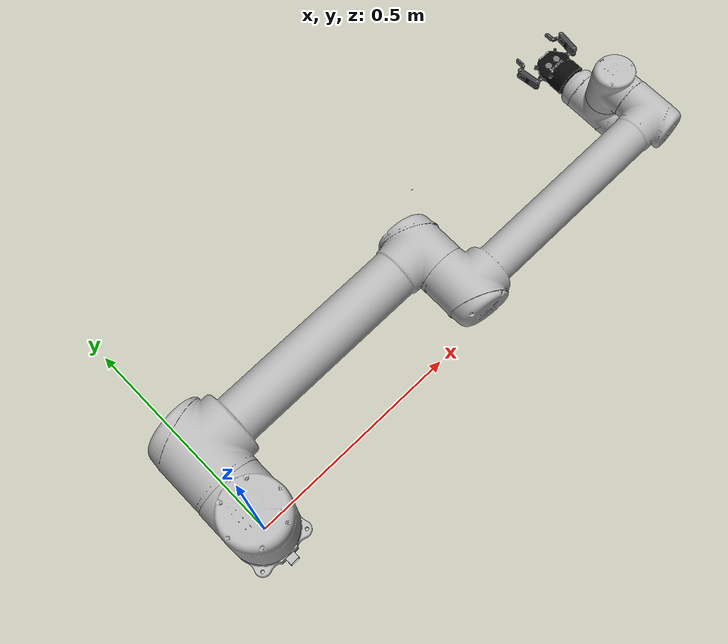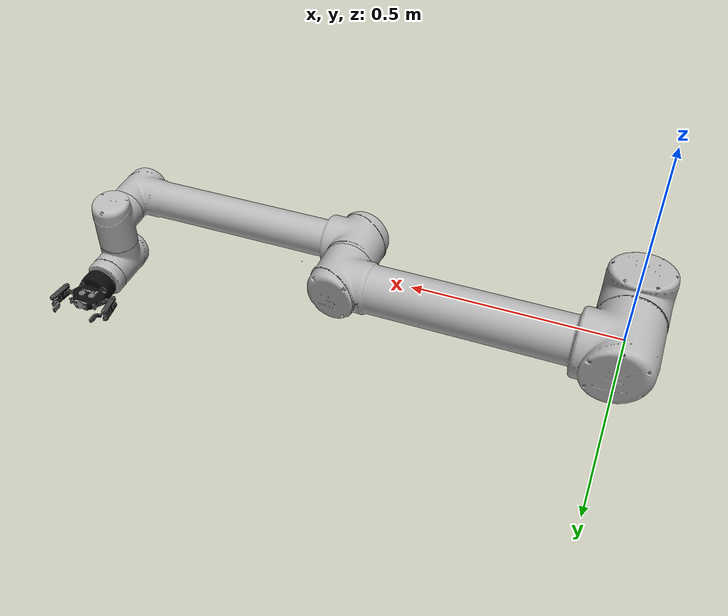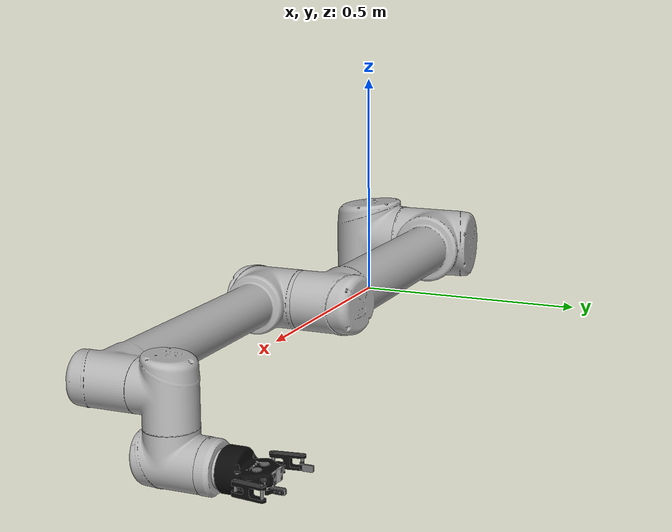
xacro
<robot name="ur10_w_gripper" xmlns:xacro="http://www.ros.org/wiki/xacro" xmlns:xi="http://www.w3.org/2001/XInclude">

<!-- myrobot urdf file -->
<xacro:include filename="$(find ur_description)/urdf/ur10_joint_limited_robot.urdf"/>

<!-- add any joints/links required to connect the two -->

<xacro:include filename="$(find robotiq_85_description)/urdf/robotiq_85_gripper.urdf.xacro" />

<!-- ur10 -->
  <!-- The ur10 xacro must be included with passing parameters -->
  <!-- end-effector -->
  <!-- Here we include the end-effector by setting the parameters -->
  <!-- TODO: check end-effector link name of robot -->
  <xacro:robotiq_85_gripper prefix="" parent="ee_link" >
        <origin xyz="0.0 0 0.0" rpy="0 0 0"/>
    </xacro:robotiq_85_gripper>

</robot>

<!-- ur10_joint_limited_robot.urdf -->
<!-- |    This document was autogenerated by xacro from ur10_joint_limited_robot.urdf.xacro | -->
<!-- |    EDITING THIS FILE BY HAND IS NOT RECOMMENDED                                 | -->
<robot name="ur10">
  <gazebo>
    <plugin filename="libgazebo_ros_control.so" name="ros_control">
    </plugin>
  </gazebo>
  <!--
  Author: Kelsey Hawkins
  Contributers: Jimmy Da Silva, Ajit Krisshna N L, Muhammad Asif Rana
-->
  <!-- measured from model -->
  <link name="base_link">
    <visual>
      <geometry>
        <mesh filename="package://ur_description/meshes/ur10/visual/base.dae"/>
      </geometry>
      <material name="LightGrey">
        <color rgba="0.7 0.7 0.7 1.0"/>
      </material>
    </visual>
    <collision>
      <geometry>
        <mesh filename="package://ur_description/meshes/ur10/collision/base.stl"/>
      </geometry>
    </collision>
    <inertial>
      <mass value="4.0"/>
      <origin rpy="0 0 0" xyz="0.0 0.0 0.0"/>
      <inertia ixx="0.0061063308908" ixy="0.0" ixz="0.0" iyy="0.0061063308908" iyz="0.0" izz="0.01125"/>
    </inertial>
  </link>
  <joint name="shoulder_pan_joint" type="revolute">
    <parent link="base_link"/>
    <child link="shoulder_link"/>
    <origin rpy="0.0 0.0 0.0" xyz="0.0 0.0 0.1273"/>
    <axis xyz="0 0 1"/>
    <limit effort="330.0" lower="-3.14159265359" upper="3.14159265359" velocity="2.16"/>
    <dynamics damping="0.0" friction="0.0"/>
  </joint>
  <link name="shoulder_link">
    <visual>
      <geometry>
        <mesh filename="package://ur_description/meshes/ur10/visual/shoulder.dae"/>
      </geometry>
      <material name="LightGrey">
        <color rgba="0.7 0.7 0.7 1.0"/>
      </material>
    </visual>
    <collision>
      <geometry>
        <mesh filename="package://ur_description/meshes/ur10/collision/shoulder.stl"/>
      </geometry>
    </collision>
    <inertial>
      <mass value="7.778"/>
      <origin rpy="0 0 0" xyz="0.0 0.0 0.0"/>
      <inertia ixx="0.0314743125769" ixy="0.0" ixz="0.0" iyy="0.0314743125769" iyz="0.0" izz="0.021875625"/>
    </inertial>
  </link>
  <joint name="shoulder_lift_joint" type="revolute">
    <parent link="shoulder_link"/>
    <child link="upper_arm_link"/>
    <origin rpy="0.0 1.57079632679 0.0" xyz="0.0 0.220941 0.0"/>
    <axis xyz="0 1 0"/>
    <limit effort="330.0" lower="-3.14159265359" upper="3.14159265359" velocity="2.16"/>
    <dynamics damping="0.0" friction="0.0"/>
  </joint>
  <link name="upper_arm_link">
    <visual>
      <geometry>
        <mesh filename="package://ur_description/meshes/ur10/visual/upperarm.dae"/>
      </geometry>
      <material name="LightGrey">
        <color rgba="0.7 0.7 0.7 1.0"/>
      </material>
    </visual>
    <collision>
      <geometry>
        <mesh filename="package://ur_description/meshes/ur10/collision/upperarm.stl"/>
      </geometry>
    </collision>
    <inertial>
      <mass value="12.93"/>
      <origin rpy="0 0 0" xyz="0.0 -0.045 0.306"/>
      <inertia ixx="0.421753803798" ixy="0.0" ixz="0.0" iyy="0.421753803798" iyz="0.0" izz="0.036365625"/>
    </inertial>
  </link>
  <joint name="elbow_joint" type="revolute">
    <parent link="upper_arm_link"/>
    <child link="forearm_link"/>
    <origin rpy="0.0 0.0 0.0" xyz="0.0 -0.1719 0.612"/>
    <axis xyz="0 1 0"/>
    <limit effort="150.0" lower="-3.14159265359" upper="3.14159265359" velocity="3.15"/>
    <dynamics damping="0.0" friction="0.0"/>
  </joint>
  <link name="forearm_link">
    <visual>
      <geometry>
        <mesh filename="package://ur_description/meshes/ur10/visual/forearm.dae"/>
      </geometry>
      <material name="LightGrey">
        <color rgba="0.7 0.7 0.7 1.0"/>
      </material>
    </visual>
    <collision>
      <geometry>
        <mesh filename="package://ur_description/meshes/ur10/collision/forearm.stl"/>
      </geometry>
    </collision>
    <inertial>
      <mass value="3.87"/>
      <origin rpy="0 0 0" xyz="0.0 0.0 0.28615"/>
      <inertia ixx="0.111069694097" ixy="0.0" ixz="0.0" iyy="0.111069694097" iyz="0.0" izz="0.010884375"/>
    </inertial>
  </link>
  <joint name="wrist_1_joint" type="revolute">
    <parent link="forearm_link"/>
    <child link="wrist_1_link"/>
    <origin rpy="0.0 1.57079632679 0.0" xyz="0.0 0.0 0.5723"/>
    <axis xyz="0 1 0"/>
    <limit effort="54.0" lower="-3.14159265359" upper="3.14159265359" velocity="3.2"/>
    <dynamics damping="0.0" friction="0.0"/>
  </joint>
  <link name="wrist_1_link">
    <visual>
      <geometry>
        <mesh filename="package://ur_description/meshes/ur10/visual/wrist1.dae"/>
      </geometry>
      <material name="LightGrey">
        <color rgba="0.7 0.7 0.7 1.0"/>
      </material>
    </visual>
    <collision>
      <geometry>
        <mesh filename="package://ur_description/meshes/ur10/collision/wrist1.stl"/>
      </geometry>
    </collision>
    <inertial>
      <mass value="1.96"/>
      <origin rpy="0 0 0" xyz="0.0 0.1149 0.0"/>
      <inertia ixx="0.0051082479567" ixy="0.0" ixz="0.0" iyy="0.0051082479567" iyz="0.0" izz="0.0055125"/>
    </inertial>
  </link>
  <joint name="wrist_2_joint" type="revolute">
    <parent link="wrist_1_link"/>
    <child link="wrist_2_link"/>
    <origin rpy="0.0 0.0 0.0" xyz="0.0 0.1149 0.0"/>
    <axis xyz="0 0 1"/>
    <limit effort="54.0" lower="-3.14159265359" upper="3.14159265359" velocity="3.2"/>
    <dynamics damping="0.0" friction="0.0"/>
  </joint>
  <link name="wrist_2_link">
    <visual>
      <geometry>
        <mesh filename="package://ur_description/meshes/ur10/visual/wrist2.dae"/>
      </geometry>
      <material name="LightGrey">
        <color rgba="0.7 0.7 0.7 1.0"/>
      </material>
    </visual>
    <collision>
      <geometry>
        <mesh filename="package://ur_description/meshes/ur10/collision/wrist2.stl"/>
      </geometry>
    </collision>
    <inertial>
      <mass value="1.96"/>
      <origin rpy="0 0 0" xyz="0.0 0.0 0.1157"/>
      <inertia ixx="0.0051082479567" ixy="0.0" ixz="0.0" iyy="0.0051082479567" iyz="0.0" izz="0.0055125"/>
    </inertial>
  </link>
  <joint name="wrist_3_joint" type="revolute">
    <parent link="wrist_2_link"/>
    <child link="wrist_3_link"/>
    <origin rpy="0.0 0.0 0.0" xyz="0.0 0.0 0.1157"/>
    <axis xyz="0 1 0"/>
    <limit effort="54.0" lower="-3.14159265359" upper="3.14159265359" velocity="3.2"/>
    <dynamics damping="0.0" friction="0.0"/>
  </joint>
  <link name="wrist_3_link">
    <visual>
      <geometry>
        <mesh filename="package://ur_description/meshes/ur10/visual/wrist3.dae"/>
      </geometry>
      <material name="LightGrey">
        <color rgba="0.7 0.7 0.7 1.0"/>
      </material>
    </visual>
    <collision>
      <geometry>
        <mesh filename="package://ur_description/meshes/ur10/collision/wrist3.stl"/>
      </geometry>
    </collision>
    <inertial>
      <mass value="0.202"/>
      <origin rpy="1.57079632679 0 0" xyz="0.0 0.07695 0.0"/>
      <inertia ixx="0.000117921661165" ixy="0.0" ixz="0.0" iyy="0.000117921661165" iyz="0.0" izz="0.000204525"/>
    </inertial>
  </link>
  <joint name="ee_fixed_joint" type="fixed">
    <parent link="wrist_3_link"/>
    <child link="ee_link"/>
    <origin rpy="0.0 0.0 1.57079632679" xyz="0.0 0.0922 0.0"/>
  </joint>
  <link name="ee_link">
    <collision>
      <geometry>
        <box size="0.01 0.01 0.01"/>
      </geometry>
      <origin rpy="0 0 0" xyz="-0.01 0 0"/>
    </collision>
  </link>
  <transmission name="shoulder_pan_trans">
    <type>transmission_interface/SimpleTransmission</type>
    <joint name="shoulder_pan_joint">
      <hardwareInterface>hardware_interface/PositionJointInterface</hardwareInterface>
    </joint>
    <actuator name="shoulder_pan_motor">
      <mechanicalReduction>1</mechanicalReduction>
    </actuator>
  </transmission>
  <transmission name="shoulder_lift_trans">
    <type>transmission_interface/SimpleTransmission</type>
    <joint name="shoulder_lift_joint">
      <hardwareInterface>hardware_interface/PositionJointInterface</hardwareInterface>
    </joint>
    <actuator name="shoulder_lift_motor">
      <mechanicalReduction>1</mechanicalReduction>
    </actuator>
  </transmission>
  <transmission name="elbow_trans">
    <type>transmission_interface/SimpleTransmission</type>
    <joint name="elbow_joint">
      <hardwareInterface>hardware_interface/PositionJointInterface</hardwareInterface>
    </joint>
    <actuator name="elbow_motor">
      <mechanicalReduction>1</mechanicalReduction>
    </actuator>
  </transmission>
  <transmission name="wrist_1_trans">
    <type>transmission_interface/SimpleTransmission</type>
    <joint name="wrist_1_joint">
      <hardwareInterface>hardware_interface/PositionJointInterface</hardwareInterface>
    </joint>
    <actuator name="wrist_1_motor">
      <mechanicalReduction>1</mechanicalReduction>
    </actuator>
  </transmission>
  <transmission name="wrist_2_trans">
    <type>transmission_interface/SimpleTransmission</type>
    <joint name="wrist_2_joint">
      <hardwareInterface>hardware_interface/PositionJointInterface</hardwareInterface>
    </joint>
    <actuator name="wrist_2_motor">
      <mechanicalReduction>1</mechanicalReduction>
    </actuator>
  </transmission>
  <transmission name="wrist_3_trans">
    <type>transmission_interface/SimpleTransmission</type>
    <joint name="wrist_3_joint">
      <hardwareInterface>hardware_interface/PositionJointInterface</hardwareInterface>
    </joint>
    <actuator name="wrist_3_motor">
      <mechanicalReduction>1</mechanicalReduction>
    </actuator>
  </transmission>
  <gazebo reference="shoulder_link">
    <selfCollide>true</selfCollide>
  </gazebo>
  <gazebo reference="upper_arm_link">
    <selfCollide>true</selfCollide>
  </gazebo>
  <gazebo reference="forearm_link">
    <selfCollide>true</selfCollide>
  </gazebo>
  <gazebo reference="wrist_1_link">
    <selfCollide>true</selfCollide>
  </gazebo>
  <gazebo reference="wrist_3_link">
    <selfCollide>true</selfCollide>
  </gazebo>
  <gazebo reference="wrist_2_link">
    <selfCollide>true</selfCollide>
  </gazebo>
  <gazebo reference="ee_link">
    <selfCollide>true</selfCollide>
  </gazebo>
  <!-- ROS base_link to UR 'Base' Coordinates transform -->
  <link name="base"/>
  <joint name="base_link-base_fixed_joint" type="fixed">
    <!-- NOTE: this rotation is only needed as long as base_link itself is
                 not corrected wrt the real robot (ie: rotated over 180
                 degrees)
      -->
    <origin rpy="0 0 -3.14159265359" xyz="0 0 0"/>
    <parent link="base_link"/>
    <child link="base"/>
  </joint>
  <!-- Frame coincident with all-zeros TCP on UR controller -->
  <link name="tool0"/>
  <joint name="wrist_3_link-tool0_fixed_joint" type="fixed">
    <origin rpy="-1.57079632679 0 0" xyz="0 0.0922 0"/>
    <parent link="wrist_3_link"/>
    <child link="tool0"/>
  </joint>
  <link name="world"/>
  <joint name="world_joint" type="fixed">
    <parent link="world"/>
    <child link="base_link"/>
    <origin rpy="0.0 0.0 0.0" xyz="0.0 0.0 0.0"/>
  </joint>
</robot>

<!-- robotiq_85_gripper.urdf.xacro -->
<robot name="robotiq_85_gripper" xmlns:xacro="http://ros.org/wiki/xacro">
    <xacro:include filename="$(find robotiq_85_description)/urdf/robotiq_85_gripper.transmission.xacro" />

    <xacro:macro name="robotiq_85_gripper" params="prefix parent *origin">

        <joint name="${prefix}gripper_base_joint" type="fixed">
            <parent link="${parent}"/>
            <child link="${prefix}gripper_base_link"/>
            <xacro:insert_block name="origin"/>
        </joint>

        <link name="${prefix}gripper_base_link">
            <visual>
                <geometry>
                    <mesh filename="package://robotiq_85_description/meshes/visual/robotiq_85_base_link.dae"/>
                </geometry>
            </visual>
            <collision>
                <geometry>
                    <mesh filename="package://robotiq_85_description/meshes/collision/robotiq_85_base_link.stl"/>
                </geometry>
            </collision>
            <inertial>
                <mass value="0.636951" />
                <origin xyz="0.0 0.0 0.0" />
                <inertia ixx = "0.000380" ixy = "0.000000" ixz = "0.000000"
                         iyx = "0.000000" iyy = "0.001110" iyz = "0.000000"
                         izx = "0.000000" izy = "0.000000" izz = "0.001171" />
            </inertial>
        </link>

        <gazebo reference="${prefix}gripper_base_link">
            <implicitSpringDamper>1</implicitSpringDamper>
            <mu1>100000</mu1>
            <mu2>100000</mu2>
            <kp>100000000.0</kp>
            <kd>1.0</kd>
        </gazebo>

        <joint name="${prefix}gripper_finger1_joint" type="revolute">
            <parent link="${prefix}gripper_base_link"/>
            <child link="${prefix}gripper_finger1_knuckle_link"/>
            <axis xyz="0 0 1"/>
            <origin rpy="${pi} 0.0 0.0" xyz="0.05490451627 0.03060114443 0.0"/>
            <limit lower="0.0" upper="0.804" velocity="2.0" effort="1000"/>
        </joint>

        <joint name="${prefix}gripper_finger2_joint" type="revolute">
            <parent link="${prefix}gripper_base_link"/>
            <child link="${prefix}gripper_finger2_knuckle_link"/>
            <axis xyz="0 0 1"/>
            <origin rpy="0.0 0.0 0.0" xyz="0.05490451627 -0.03060114443 0.0"/>
            <limit lower="-3.14" upper="3.14" velocity="100.0" effort="1000"/>
            <mimic joint="${prefix}gripper_finger1_joint"/>
        </joint>

        <link name="${prefix}gripper_finger1_knuckle_link">
            <visual>
                <geometry>
                    <mesh filename="package://robotiq_85_description/meshes/visual/robotiq_85_knuckle_link.dae"/>
                </geometry>
            </visual>
            <collision>
                <geometry>
                    <mesh filename="package://robotiq_85_description/meshes/collision/robotiq_85_knuckle_link.stl"/>
                </geometry>
            </collision>
            <inertial>
                <mass value="0.018491" />
                <origin xyz="0.0 0.0 0.0" />
                <inertia ixx = "0.000009" ixy = "-0.000001" ixz = "0.000000"
                         iyx = "-0.000001" iyy = "0.000001" iyz = "0.000000"
                         izx = "0.000000" izy = "0.000000" izz = "0.000010" />
            </inertial>
        </link>

        <gazebo reference="${prefix}gripper_finger1_knuckle_link">
            <implicitSpringDamper>1</implicitSpringDamper>
            <mu1>100000</mu1>
            <mu2>100000</mu2>
            <kp>100000000.0</kp>
            <kd>1.0</kd>
        </gazebo>

        <link name="${prefix}gripper_finger2_knuckle_link">
            <visual>
                <geometry>
                    <mesh filename="package://robotiq_85_description/meshes/visual/robotiq_85_knuckle_link.dae"/>
                </geometry>
            </visual>
            <collision>
                <geometry>
                    <mesh filename="package://robotiq_85_description/meshes/collision/robotiq_85_knuckle_link.stl"/>
                </geometry>
            </collision>
            <inertial>
                <mass value="0.018491" />
                <origin xyz="0.0 0.0 0.0" />
                <inertia ixx = "0.000009" ixy = "-0.000001" ixz = "0.000000"
                         iyx = "-0.000001" iyy = "0.000001" iyz = "0.000000"
                         izx = "0.000000" izy = "0.000000" izz = "0.000010" />
            </inertial>
        </link>

        <gazebo reference="${prefix}gripper_finger2_knuckle_link">
            <implicitSpringDamper>1</implicitSpringDamper>
            <mu1>100000</mu1>
            <mu2>100000</mu2>
            <kp>100000000.0</kp>
            <kd>1.0</kd>
        </gazebo>

        <joint name="${prefix}gripper_finger1_finger_joint" type="fixed">
            <parent link="${prefix}gripper_finger1_knuckle_link"/>
            <child link="${prefix}gripper_finger1_finger_link"/>
            <origin xyz="-0.00408552455 -0.03148604435 0.0" rpy="0 0 0" />
        </joint>

        <joint name="${prefix}gripper_finger2_finger_joint" type="fixed">
            <parent link="${prefix}gripper_finger2_knuckle_link"/>
            <child link="${prefix}gripper_finger2_finger_link"/>
            <origin xyz="-0.00408552455 -0.03148604435 0.0" rpy="0 0 0" />
        </joint>

        <link name="${prefix}gripper_finger1_finger_link">
            <visual>
                <geometry>
                    <mesh filename="package://robotiq_85_description/meshes/visual/robotiq_85_finger_link.dae"/>
                </geometry>
            </visual>
            <collision>
                <geometry>
                    <mesh filename="package://robotiq_85_description/meshes/collision/robotiq_85_finger_link.stl"/>
                </geometry>
            </collision>
            <inertial>
                <mass value="0.027309" />
                <origin xyz="0.0 0.0 0.0" />
                <inertia ixx = "0.000003" ixy = "-0.000002" ixz = "0.000000"
                         iyx = "-0.000002" iyy = "0.000021" iyz = "0.000000"
                         izx = "0.000000" izy = "0.000000" izz = "0.000020" />
            </inertial>
        </link>

        <gazebo reference="${prefix}gripper_finger1_finger_link">
            <implicitSpringDamper>1</implicitSpringDamper>
            <mu1>100000</mu1>
            <mu2>100000</mu2>
            <kp>100000000.0</kp>
            <kd>1.0</kd>
        </gazebo>

        <link name="${prefix}gripper_finger2_finger_link">
            <visual>
                <geometry>
                    <mesh filename="package://robotiq_85_description/meshes/visual/robotiq_85_finger_link.dae"/>
                </geometry>
            </visual>
            <collision>
                <geometry>
                    <mesh filename="package://robotiq_85_description/meshes/collision/robotiq_85_finger_link.stl"/>
                </geometry>
            </collision>
            <inertial>
                <mass value="0.027309" />
                <origin xyz="0.0 0.0 0.0" />
                <inertia ixx = "0.000003" ixy = "-0.000002" ixz = "0.000000"
                         iyx = "-0.000002" iyy = "0.000021" iyz = "0.000000"
                         izx = "0.000000" izy = "0.000000" izz = "0.000020" />
            </inertial>
        </link>

        <gazebo reference="${prefix}gripper_finger2_finger_link">
            <implicitSpringDamper>1</implicitSpringDamper>
            <mu1>100000</mu1>
            <mu2>100000</mu2>
            <kp>100000000.0</kp>
            <kd>1.0</kd>
        </gazebo>

        <joint name="${prefix}gripper_finger1_inner_knuckle_joint" type="continuous">
            <parent link="${prefix}gripper_base_link"/>
            <child link="${prefix}gripper_finger1_inner_knuckle_link"/>
            <axis xyz="0 0 1"/>
            <origin xyz="0.06142 0.0127 0" rpy="${pi} 0.0 0.0" />
            <limit lower="-3.14" upper="3.14" velocity="100.0" effort="0.1"/>
            <mimic joint="${prefix}gripper_finger1_joint" offset="0"/>
        </joint>

        <joint name="${prefix}gripper_finger2_inner_knuckle_joint" type="continuous">
            <parent link="${prefix}gripper_base_link"/>
            <child link="${prefix}gripper_finger2_inner_knuckle_link"/>
            <axis xyz="0 0 1"/>
            <origin xyz="0.06142 -0.0127 0" rpy="0 0 0"/>
            <limit lower="-3.14" upper="3.14" velocity="100.0" effort="0.1"/>
            <mimic joint="${prefix}gripper_finger1_joint" offset="0"/>
        </joint>

        <link name="${prefix}gripper_finger1_inner_knuckle_link">
            <visual>
                <geometry>
                    <mesh filename="package://robotiq_85_description/meshes/visual/robotiq_85_inner_knuckle_link.dae"/>
                </geometry>
            </visual>
            <collision>
                <geometry>
                    <mesh filename="package://robotiq_85_description/meshes/collision/robotiq_85_inner_knuckle_link.stl"/>
                </geometry>
            </collision>
            <inertial>
                <mass value="0.029951" />
                <origin xyz="0.0 0.0 0.0" />
                <inertia ixx = "0.000039" ixy = "0.000000" ixz = "0.000000"
                         iyx = "0.000000" iyy = "0.000005" iyz = "0.000000"
                         izx = "0.000000" izy = "0.000000" izz = "0.000035" />
            </inertial>
        </link>

        <gazebo reference="${prefix}gripper_finger1_inner_knuckle_link">
            <implicitSpringDamper>1</implicitSpringDamper>
            <mu1>100000</mu1>
            <mu2>100000</mu2>
            <kp>100000000.0</kp>
            <kd>1.0</kd>
        </gazebo>

        <link name="${prefix}gripper_finger2_inner_knuckle_link">
            <visual>
                <geometry>
                    <mesh filename="package://robotiq_85_description/meshes/visual/robotiq_85_inner_knuckle_link.dae"/>
                </geometry>
            </visual>
            <collision>
                <geometry>
                    <mesh filename="package://robotiq_85_description/meshes/collision/robotiq_85_inner_knuckle_link.stl"/>
                </geometry>
            </collision>
            <inertial>
                <mass value="0.029951" />
                <origin xyz="0.0 0.0 0.0" />
                <inertia ixx = "0.000039" ixy = "0.000000" ixz = "0.000000"
                         iyx = "0.000000" iyy = "0.000005" iyz = "0.000000"
                         izx = "0.000000" izy = "0.000000" izz = "0.000035" />
            </inertial>
        </link>

        <gazebo reference="${prefix}gripper_finger2_inner_knuckle_link">
            <implicitSpringDamper>1</implicitSpringDamper>
            <mu1>100000</mu1>
            <mu2>100000</mu2>
            <kp>100000000.0</kp>
            <kd>1.0</kd>
        </gazebo>

        <joint name="${prefix}gripper_finger1_finger_tip_joint" type="continuous">
            <parent link="${prefix}gripper_finger1_inner_knuckle_link"/>
            <child link="${prefix}gripper_finger1_finger_tip_link"/>
            <axis xyz="0 0 1"/>
            <origin xyz="0.04303959807 -0.03759940821 0.0" rpy="0.0 0.0 0.0"/>
            <limit lower="-3.14" upper="3.14" velocity="100.0" effort="0.1"/>
            <mimic joint="${prefix}gripper_finger1_joint" multiplier="-1"/>
        </joint>

        <joint name="${prefix}gripper_finger2_finger_tip_joint" type="continuous">
            <parent link="${prefix}gripper_finger2_inner_knuckle_link"/>
            <child link="${prefix}gripper_finger2_finger_tip_link"/>
            <axis xyz="0 0 1"/>
            <origin rpy="0.0 0.0 0.0" xyz="0.04303959807 -0.03759940821  0.0"/>
            <limit lower="-3.14" upper="3.14" velocity="100.0" effort="0.1"/>
            <mimic joint="${prefix}gripper_finger1_joint" multiplier="-1"/>
        </joint>

        <link name="${prefix}gripper_finger1_finger_tip_link">
            <visual>
                <geometry>
                    <mesh filename="package://robotiq_85_description/meshes/visual/robotiq_85_finger_tip_link.dae"/>
                </geometry>
            </visual>
            <collision>
                <geometry>
                    <mesh filename="package://robotiq_85_description/meshes/collision/robotiq_85_finger_tip_link.stl"/>
                </geometry>
            </collision>
            <inertial>
                <mass value="0.019555" />
                <origin xyz="0.0 0.0 0.0" />
                <inertia ixx = "0.000002" ixy = "0.000000" ixz = "0.000000"
                         iyx = "0.000000" iyy = "0.000005" iyz = "0.000000"
                         izx = "0.000000" izy = "0.000000" izz = "0.000006" />
            </inertial>
        </link>

        <gazebo reference="${prefix}gripper_finger1_finger_tip_link">
            <implicitSpringDamper>1</implicitSpringDamper>
            <mu1>100000</mu1>
            <mu2>100000</mu2>
            <kp>100000000.0</kp>
            <kd>1.0</kd>
        </gazebo>

        <link name="${prefix}gripper_finger2_finger_tip_link">
            <visual>
                <geometry>
                    <mesh filename="package://robotiq_85_description/meshes/visual/robotiq_85_finger_tip_link.dae"/>
                </geometry>
            </visual>
            <collision>
                <geometry>
                    <mesh filename="package://robotiq_85_description/meshes/collision/robotiq_85_finger_tip_link.stl"/>
                </geometry>
            </collision>
            <inertial>
                <mass value="0.019555" />
                <origin xyz="0.0 0.0 0.0" />
                <inertia ixx = "0.000002" ixy = "0.000000" ixz = "0.000000"
                         iyx = "0.000000" iyy = "0.000005" iyz = "0.000000"
                         izx = "0.000000" izy = "0.000000" izz = "0.000006" />
            </inertial>
        </link>

        <gazebo reference="${prefix}gripper_finger2_finger_tip_link">
            <implicitSpringDamper>1</implicitSpringDamper>
            <mu1>100000</mu1>
            <mu2>100000</mu2>
            <kp>100000000.0</kp>
            <kd>1.0</kd>
        </gazebo>

        <xacro:robotiq_85_gripper_transmission prefix="${prefix}" />

    </xacro:macro>
</robot>
